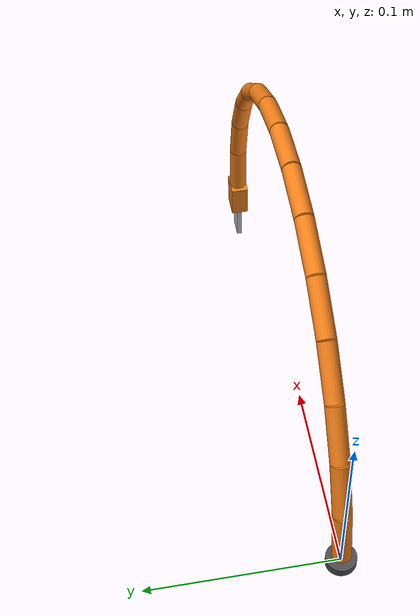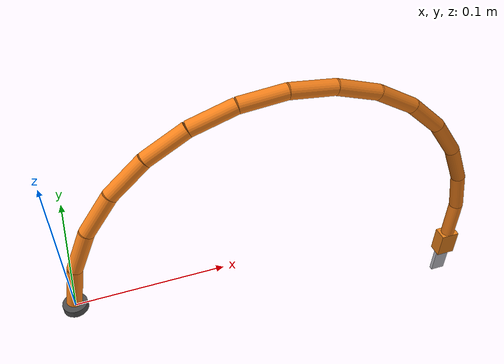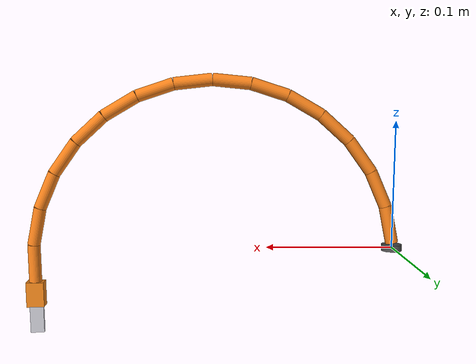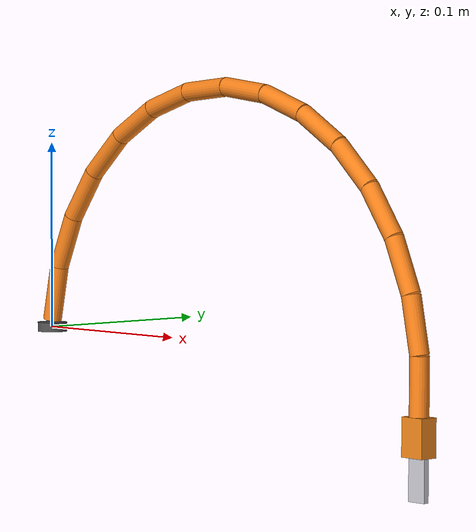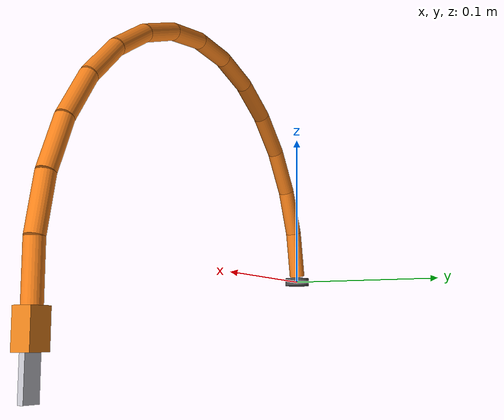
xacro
<?xml version="1.0"?>
<robot xmlns:xacro="http://www.ros.org/wiki/xacro" name="cable_rigid_isaac">
  <!-- Rigid-Segment Cable for Isaac Sim                            -->
  <!-- 15 segments with 2-DOF joints (roll + pitch)                 -->
  <!-- No Gazebo tags - clean for URDF-to-USD conversion            -->

  <!-- Cable parameters -->
  <xacro:property name="cable_radius" value="0.005"/>
  <xacro:property name="cable_length" value="0.45"/>
  <xacro:property name="num_segments" value="15"/>
  <xacro:property name="segment_length" value="${cable_length / num_segments}"/>
  <xacro:property name="segment_mass" value="0.02"/>
  <xacro:property name="cable_bend_angle" value="0.21"/>

  <!-- USB-like connector dimensions -->
  <xacro:property name="plug_width" value="0.011"/>
  <xacro:property name="plug_height" value="0.003"/>
  <xacro:property name="plug_length" value="0.022"/>

  <!-- World link (root) -->
  <link name="world"/>

  <!-- Cable anchor - fixed to world -->
  <link name="cable_anchor">
    <visual>
      <geometry><cylinder radius="0.008" length="0.005"/></geometry>
      <material name="anchor_dark"><color rgba="0.3 0.3 0.3 1"/></material>
    </visual>
    <collision>
      <geometry><cylinder radius="0.008" length="0.005"/></geometry>
    </collision>
    <inertial>
      <mass value="0.1"/>
      <inertia ixx="1e-5" ixy="0" ixz="0" iyy="1e-5" iyz="0" izz="1e-5"/>
    </inertial>
  </link>
  <joint name="cable_anchor_joint" type="fixed">
    <parent link="world"/>
    <child link="cable_anchor"/>
    <origin xyz="0 0 0" rpy="0 0 0"/>
  </joint>

  <!-- Cable segment macro with 2-DOF (roll + pitch) -->
  <xacro:macro name="cable_segment_2dof" params="index parent_link is_first:=false">
    <!-- Roll joint (X-axis rotation) -->
    <joint name="cable_roll_${index}" type="revolute">
      <parent link="${parent_link}"/>
      <child link="cable_roll_link_${index}"/>
      <xacro:if value="${is_first}">
        <origin xyz="0 0 0.004" rpy="0 ${cable_bend_angle} 0"/>
      </xacro:if>
      <xacro:unless value="${is_first}">
        <origin xyz="0 0 ${segment_length}" rpy="0 ${cable_bend_angle} 0"/>
      </xacro:unless>
      <axis xyz="1 0 0"/>
      <limit lower="-3.14" upper="3.14" effort="10" velocity="10"/>
      <dynamics damping="0.0001" friction="0.0"/>
    </joint>

    <!-- Invisible roll link -->
    <link name="cable_roll_link_${index}">
      <inertial>
        <mass value="0.001"/>
        <inertia ixx="1e-9" ixy="0" ixz="0" iyy="1e-9" iyz="0" izz="1e-9"/>
      </inertial>
    </link>

    <!-- Pitch joint (Y-axis rotation) -->
    <joint name="cable_pitch_${index}" type="revolute">
      <parent link="cable_roll_link_${index}"/>
      <child link="cable_segment_${index}"/>
      <origin xyz="0 0 0" rpy="0 0 0"/>
      <axis xyz="0 1 0"/>
      <limit lower="-3.14" upper="3.14" effort="10" velocity="10"/>
      <dynamics damping="0.0001" friction="0.0"/>
    </joint>

    <!-- Visible cable segment -->
    <link name="cable_segment_${index}">
      <visual>
        <origin xyz="0 0 ${segment_length/2}"/>
        <geometry><cylinder radius="${cable_radius}" length="${segment_length}"/></geometry>
        <material name="cable_orange"><color rgba="0.95 0.5 0.1 1"/></material>
      </visual>
      <collision>
        <origin xyz="0 0 ${segment_length/2}"/>
        <geometry><cylinder radius="${cable_radius}" length="${segment_length}"/></geometry>
      </collision>
      <inertial>
        <mass value="${segment_mass}"/>
        <origin xyz="0 0 ${segment_length/2}"/>
        <inertia ixx="2e-6" ixy="0" ixz="0" iyy="2e-6" iyz="0" izz="1e-7"/>
      </inertial>
    </link>
  </xacro:macro>

  <!-- Generate 15 cable segments -->
  <xacro:cable_segment_2dof index="0" parent_link="cable_anchor" is_first="true"/>
  <xacro:cable_segment_2dof index="1" parent_link="cable_segment_0"/>
  <xacro:cable_segment_2dof index="2" parent_link="cable_segment_1"/>
  <xacro:cable_segment_2dof index="3" parent_link="cable_segment_2"/>
  <xacro:cable_segment_2dof index="4" parent_link="cable_segment_3"/>
  <xacro:cable_segment_2dof index="5" parent_link="cable_segment_4"/>
  <xacro:cable_segment_2dof index="6" parent_link="cable_segment_5"/>
  <xacro:cable_segment_2dof index="7" parent_link="cable_segment_6"/>
  <xacro:cable_segment_2dof index="8" parent_link="cable_segment_7"/>
  <xacro:cable_segment_2dof index="9" parent_link="cable_segment_8"/>
  <xacro:cable_segment_2dof index="10" parent_link="cable_segment_9"/>
  <xacro:cable_segment_2dof index="11" parent_link="cable_segment_10"/>
  <xacro:cable_segment_2dof index="12" parent_link="cable_segment_11"/>
  <xacro:cable_segment_2dof index="13" parent_link="cable_segment_12"/>
  <xacro:cable_segment_2dof index="14" parent_link="cable_segment_13"/>

  <!-- Connector grip section -->
  <link name="connector_grip">
    <visual>
      <origin xyz="0 0 0.01"/>
      <geometry><box size="0.014 0.010 0.02"/></geometry>
      <material name="grip_orange"><color rgba="0.9 0.5 0.1 1"/></material>
    </visual>
    <collision>
      <origin xyz="0 0 0.01"/>
      <geometry><box size="0.014 0.010 0.02"/></geometry>
    </collision>
    <inertial>
      <mass value="0.02"/>
      <origin xyz="0 0 0.01"/>
      <inertia ixx="1e-5" ixy="0" ixz="0" iyy="1e-5" iyz="0" izz="1e-5"/>
    </inertial>
  </link>
  <joint name="connector_grip_joint" type="fixed">
    <parent link="cable_segment_14"/>
    <child link="connector_grip"/>
    <origin xyz="0 0 ${segment_length}" rpy="0 0 0"/>
  </joint>

  <!-- USB-like plug tip -->
  <link name="cable_connector">
    <visual>
      <origin xyz="0 0 ${plug_length/2}"/>
      <geometry><box size="${plug_width} ${plug_height} ${plug_length}"/></geometry>
      <material name="connector_metal"><color rgba="0.75 0.75 0.78 1"/></material>
    </visual>
    <collision>
      <origin xyz="0 0 ${plug_length/2}"/>
      <geometry><box size="${plug_width} ${plug_height} ${plug_length}"/></geometry>
    </collision>
    <inertial>
      <mass value="0.01"/>
      <origin xyz="0 0 ${plug_length/2}"/>
      <inertia ixx="1e-5" ixy="0" ixz="0" iyy="1e-5" iyz="0" izz="1e-5"/>
    </inertial>
  </link>
  <joint name="connector_tip_joint" type="fixed">
    <parent link="connector_grip"/>
    <child link="cable_connector"/>
    <origin xyz="0 0 0.02" rpy="0 0 0"/>
  </joint>

</robot>
